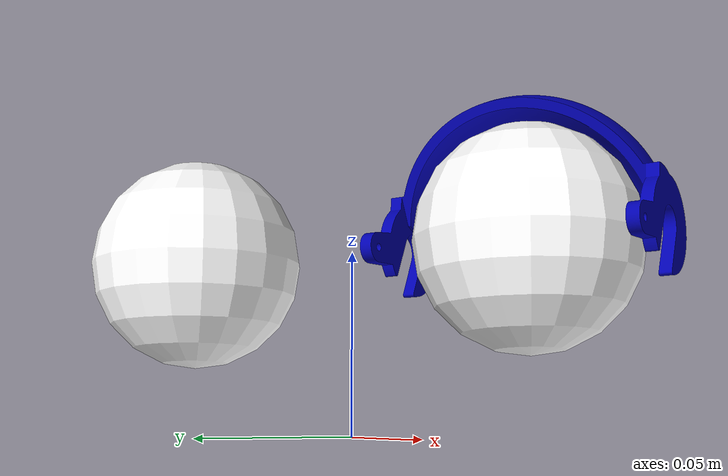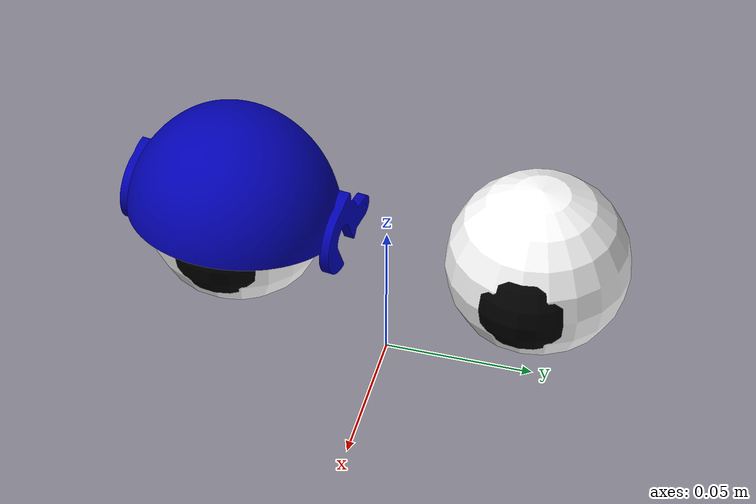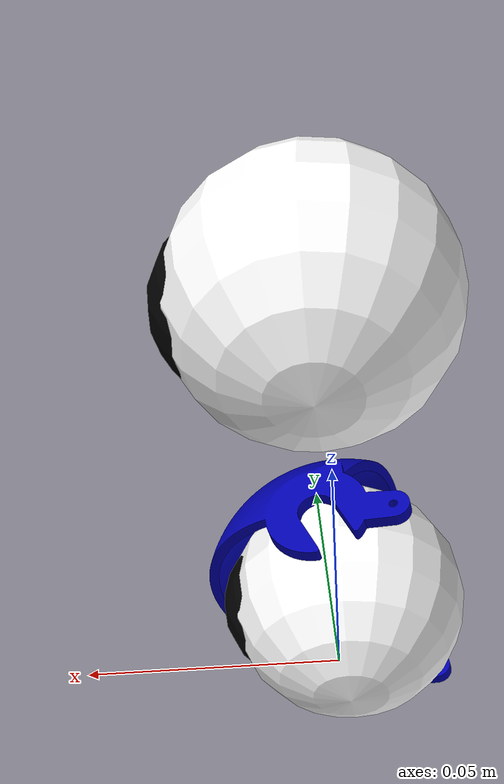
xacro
<?xml version="1.0"?>
<robot name="dobot" xmlns:xacro="http://www.ros.org/wiki/xacro">
  <xacro:property name="deg2rad" value="${3.1415/180}" />

  <xacro:macro name="eye_visual">
    <!-- draw an eyeball -->
    <visual>
      <geometry>
	<sphere radius="0.03"/>
      </geometry>
      <material name="white">
	<color rgba="1 1 1 1"/>
      </material>
    </visual>
    <visual>
      <origin xyz="0.012 0 0"/>
      <geometry>
	<sphere radius="0.02"/>
      </geometry>
      <material name="black">
	<color rgba="0 0 0 1"/>
      </material>
    </visual>
  </xacro:macro>

  <link name="eye_base"></link>

  <link name="eye_dummy"></link>

  <link name="eye_l">
    <xacro:eye_visual/>
  </link>

  <link name="eye_r">
    <xacro:eye_visual/>
  </link>

  <link name="eyelid">
    <visual>
      <geometry>
        <mesh scale="0.0013 0.0013 0.0013"  filename="package://akagachi_demo/model/1B_eyelid.stl"/>
      </geometry>
      <material name="blue">
        <color rgba="0 0 0.7 1"/>
      </material>
    </visual>
  </link>

  <link name="camera"/>
  <joint name="camera" type="fixed">
    <parent link="eye_base"/>
    <child link="camera"/>
    <origin xyz="0 0 0"/>
  </joint>

  <joint name="eye_pitch" type="revolute">
    <parent link="eye_base"/>
    <child link="eye_dummy"/>
    <origin xyz="0 0 0.05"/>
    <axis xyz="0 1 0"/>
    <limit lower="${-40*deg2rad}" upper="${40*deg2rad}" effort="1" velocity="1"/>
  </joint>

  <joint name="eye_lyaw" type="revolute">
    <parent link="eye_dummy"/>
    <child link="eye_l"/>
    <origin xyz="0 0.05 0"/>
    <axis xyz="0 0 1"/>
    <limit lower="${-40*deg2rad}" upper="${40*deg2rad}" effort="1" velocity="1"/>
  </joint>

  <joint name="eye_ryaw" type="revolute">
    <parent link="eye_dummy"/>
    <child link="eye_r"/>
    <origin xyz="0 -0.05 0"/>
    <axis xyz="0 0 1"/>
    <limit lower="${-40*deg2rad}" upper="${40*deg2rad}" effort="1" velocity="1"/>
  </joint>

  <joint name="eyelid_joint" type="revolute">
    <parent link="eye_r"/>
    <child link="eyelid"/>
    <origin xyz="0 0 0" rpy="4.8 3.14 -1.7"/>
    <axis xyz="-1 0 0"/>
    <limit lower="${-40*deg2rad}" upper="${40*deg2rad}" effort="1" velocity="1"/>
  </joint>

</robot>
